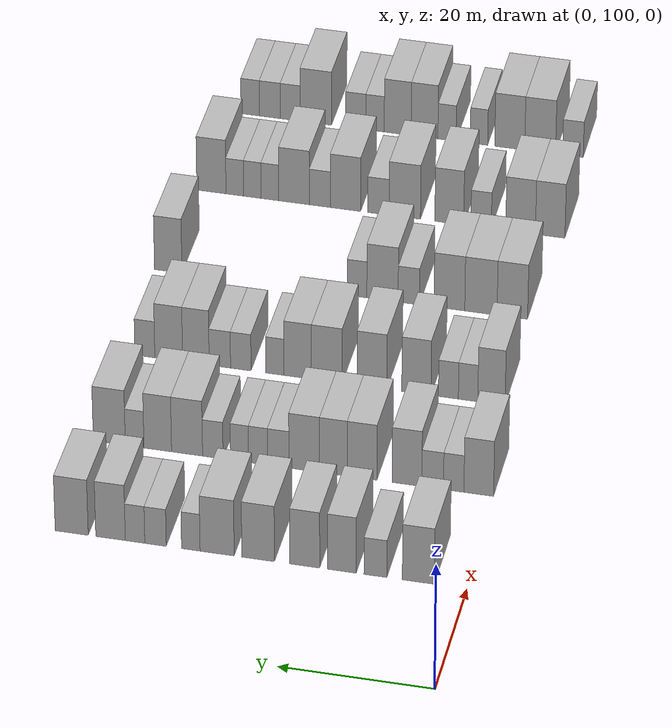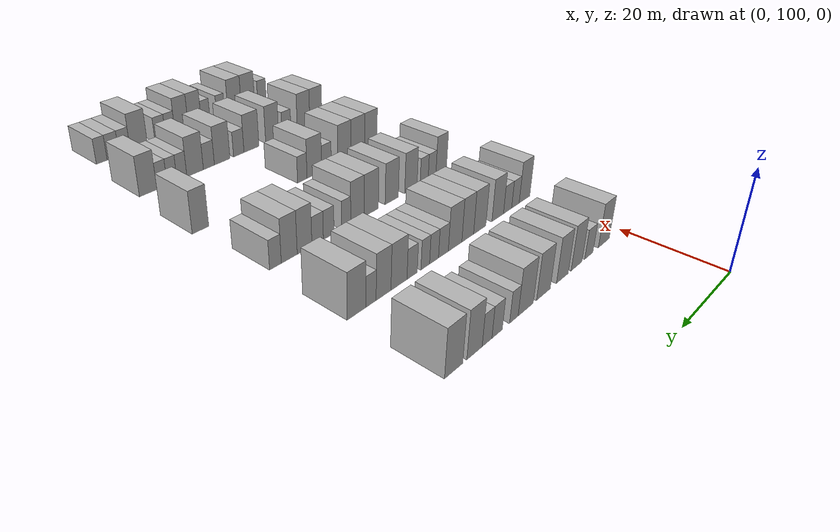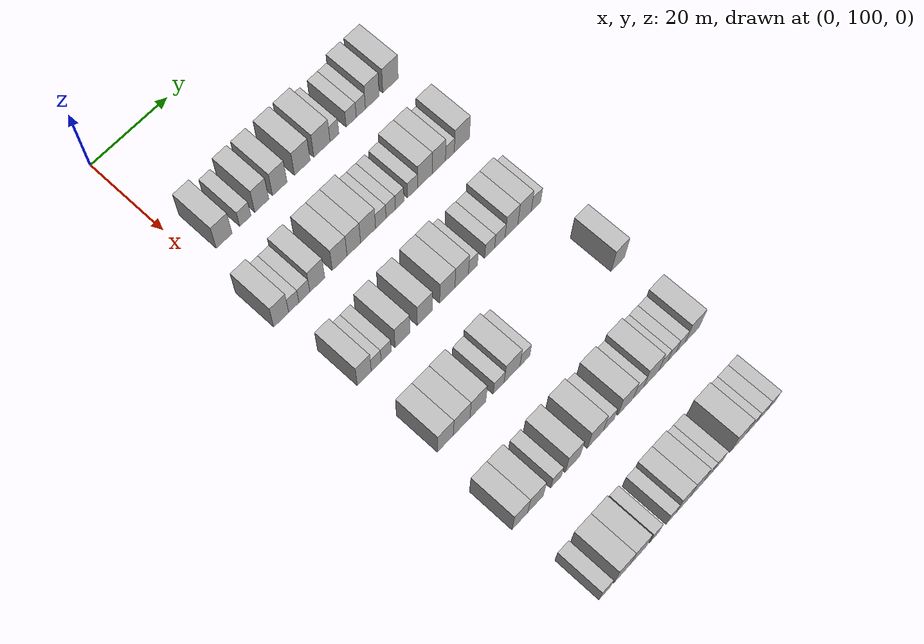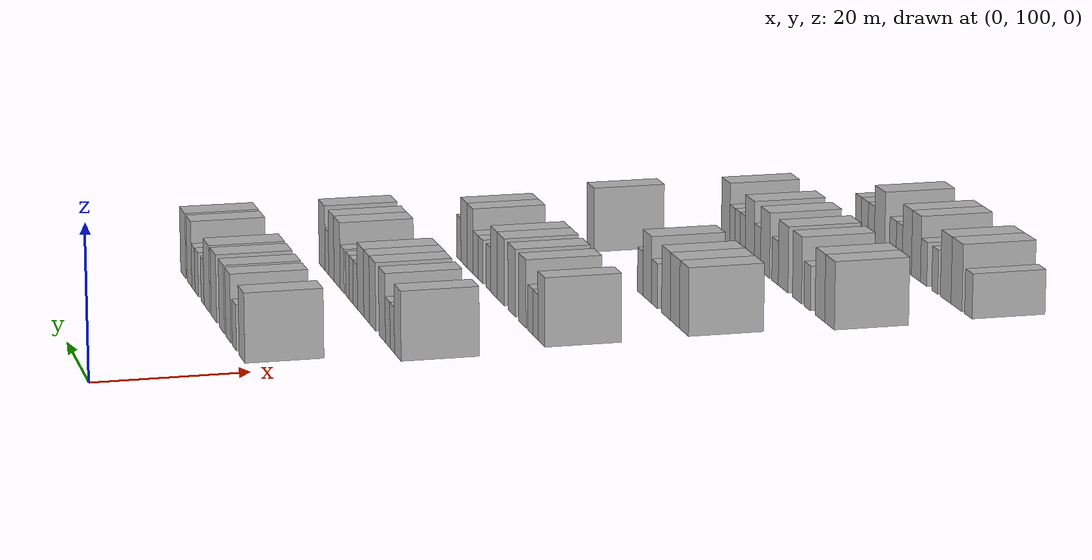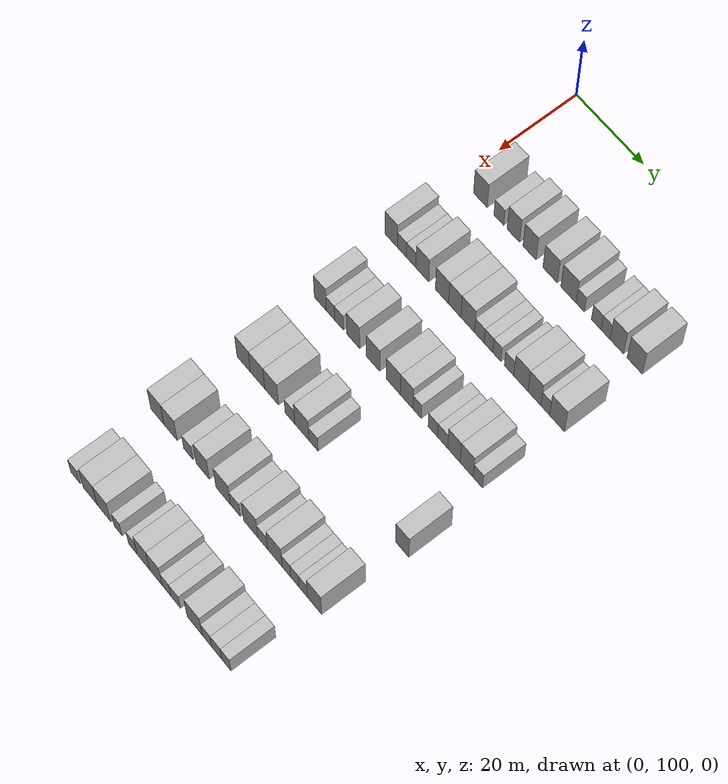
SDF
<sdf version="1.6">
 <world name="default">
  <model name="building_113">
   <static>1</static>
   <pose>25.0000 106.3141 0 0.000000 0.000000 0.000000</pose>
   <link name="link">
    <pose>0 0 4.50 0 0 0</pose>
    <collision name="collision"><geometry><box><size>10.0000 4.1466 9.0000</size></box></geometry></collision>
    <visual name="visual">
     <cast_shadows>0</cast_shadows>
     <geometry><box><size>10.0000 4.1466 9.0000</size></box></geometry>
     <material>
      <script>
       <uri>model://HANNAS_wall/materials/scripts</uri>
       <uri>model://HANNAS_wall/materials/textures</uri>
       <name>vrc/HANNAS_wall</name>
      </script>
     </material>
    </visual>
   </link>
  </model>
  <model name="building_114">
   <static>1</static>
   <pose>25.0000 111.8734 0 0.000000 0.000000 0.000000</pose>
   <link name="link">
    <pose>0 0 3.00 0 0 0</pose>
    <collision name="collision"><geometry><box><size>10.0000 2.9721 6.0000</size></box></geometry></collision>
    <visual name="visual">
     <cast_shadows>0</cast_shadows>
     <geometry><box><size>10.0000 2.9721 6.0000</size></box></geometry>
     <material>
      <script>
       <uri>model://HANNAS_wall/materials/scripts</uri>
       <uri>model://HANNAS_wall/materials/textures</uri>
       <name>vrc/HANNAS_wall</name>
      </script>
     </material>
    </visual>
   </link>
  </model>
  <model name="building_115">
   <static>1</static>
   <pose>25.0000 116.2330 0 0.000000 0.000000 0.000000</pose>
   <link name="link">
    <pose>0 0 4.50 0 0 0</pose>
    <collision name="collision"><geometry><box><size>10.0000 3.7470 9.0000</size></box></geometry></collision>
    <visual name="visual">
     <cast_shadows>0</cast_shadows>
     <geometry><box><size>10.0000 3.7470 9.0000</size></box></geometry>
     <material>
      <script>
       <uri>model://HANNAS_wall/materials/scripts</uri>
       <uri>model://HANNAS_wall/materials/textures</uri>
       <name>vrc/HANNAS_wall</name>
      </script>
     </material>
    </visual>
   </link>
  </model>
  <model name="building_116">
   <static>1</static>
   <pose>25.0000 121.0497 0 0.000000 0.000000 0.000000</pose>
   <link name="link">
    <pose>0 0 4.50 0 0 0</pose>
    <collision name="collision"><geometry><box><size>10.0000 3.8864 9.0000</size></box></geometry></collision>
    <visual name="visual">
     <cast_shadows>0</cast_shadows>
     <geometry><box><size>10.0000 3.8864 9.0000</size></box></geometry>
     <material>
      <script>
       <uri>model://HANNAS_wall/materials/scripts</uri>
       <uri>model://HANNAS_wall/materials/textures</uri>
       <name>vrc/HANNAS_wall</name>
      </script>
     </material>
    </visual>
   </link>
  </model>
  <model name="building_117">
   <static>1</static>
   <pose>25.0000 127.1225 0 0.000000 0.000000 0.000000</pose>
   <link name="link">
    <pose>0 0 4.50 0 0 0</pose>
    <collision name="collision"><geometry><box><size>10.0000 4.2592 9.0000</size></box></geometry></collision>
    <visual name="visual">
     <cast_shadows>0</cast_shadows>
     <geometry><box><size>10.0000 4.2592 9.0000</size></box></geometry>
     <material>
      <script>
       <uri>model://HANNAS_wall/materials/scripts</uri>
       <uri>model://HANNAS_wall/materials/textures</uri>
       <name>vrc/HANNAS_wall</name>
      </script>
     </material>
    </visual>
   </link>
  </model>
  <model name="building_118">
   <static>1</static>
   <pose>25.0000 132.4827 0 0.000000 0.000000 0.000000</pose>
   <link name="link">
    <pose>0 0 4.50 0 0 0</pose>
    <collision name="collision"><geometry><box><size>10.0000 4.4614 9.0000</size></box></geometry></collision>
    <visual name="visual">
     <cast_shadows>0</cast_shadows>
     <geometry><box><size>10.0000 4.4614 9.0000</size></box></geometry>
     <material>
      <script>
       <uri>model://HANNAS_wall/materials/scripts</uri>
       <uri>model://HANNAS_wall/materials/textures</uri>
       <name>vrc/HANNAS_wall</name>
      </script>
     </material>
    </visual>
   </link>
  </model>
  <model name="building_119">
   <static>1</static>
   <pose>25.0000 135.9269 0 0.000000 0.000000 0.000000</pose>
   <link name="link">
    <pose>0 0 3.00 0 0 0</pose>
    <collision name="collision"><geometry><box><size>10.0000 2.4269 6.0000</size></box></geometry></collision>
    <visual name="visual">
     <cast_shadows>0</cast_shadows>
     <geometry><box><size>10.0000 2.4269 6.0000</size></box></geometry>
     <material>
      <script>
       <uri>model://HANNAS_wall/materials/scripts</uri>
       <uri>model://HANNAS_wall/materials/textures</uri>
       <name>vrc/HANNAS_wall</name>
      </script>
     </material>
    </visual>
   </link>
  </model>
  <model name="building_120">
   <static>1</static>
   <pose>25.0000 140.5497 0 0.000000 0.000000 0.000000</pose>
   <link name="link">
    <pose>0 0 3.00 0 0 0</pose>
    <collision name="collision"><geometry><box><size>10.0000 2.8186 6.0000</size></box></geometry></collision>
    <visual name="visual">
     <cast_shadows>0</cast_shadows>
     <geometry><box><size>10.0000 2.8186 6.0000</size></box></geometry>
     <material>
      <script>
       <uri>model://HANNAS_wall/materials/scripts</uri>
       <uri>model://HANNAS_wall/materials/textures</uri>
       <name>vrc/HANNAS_wall</name>
      </script>
     </material>
    </visual>
   </link>
  </model>
  <model name="building_121">
   <static>1</static>
   <pose>25.0000 143.2389 0 0.000000 0.000000 0.000000</pose>
   <link name="link">
    <pose>0 0 3.00 0 0 0</pose>
    <collision name="collision"><geometry><box><size>10.0000 2.5599 6.0000</size></box></geometry></collision>
    <visual name="visual">
     <cast_shadows>0</cast_shadows>
     <geometry><box><size>10.0000 2.5599 6.0000</size></box></geometry>
     <material>
      <script>
       <uri>model://HANNAS_wall/materials/scripts</uri>
       <uri>model://HANNAS_wall/materials/textures</uri>
       <name>vrc/HANNAS_wall</name>
      </script>
     </material>
    </visual>
   </link>
  </model>
  <model name="building_122">
   <static>1</static>
   <pose>25.0000 146.4609 0 0.000000 0.000000 0.000000</pose>
   <link name="link">
    <pose>0 0 4.50 0 0 0</pose>
    <collision name="collision"><geometry><box><size>10.0000 3.8839 9.0000</size></box></geometry></collision>
    <visual name="visual">
     <cast_shadows>0</cast_shadows>
     <geometry><box><size>10.0000 3.8839 9.0000</size></box></geometry>
     <material>
      <script>
       <uri>model://HANNAS_wall/materials/scripts</uri>
       <uri>model://HANNAS_wall/materials/textures</uri>
       <name>vrc/HANNAS_wall</name>
      </script>
     </material>
    </visual>
   </link>
  </model>
  <model name="building_123">
   <static>1</static>
   <pose>25.0000 151.5786 0 0.000000 0.000000 0.000000</pose>
   <link name="link">
    <pose>0 0 4.50 0 0 0</pose>
    <collision name="collision"><geometry><box><size>10.0000 4.3517 9.0000</size></box></geometry></collision>
    <visual name="visual">
     <cast_shadows>0</cast_shadows>
     <geometry><box><size>10.0000 4.3517 9.0000</size></box></geometry>
     <material>
      <script>
       <uri>model://HANNAS_wall/materials/scripts</uri>
       <uri>model://HANNAS_wall/materials/textures</uri>
       <name>vrc/HANNAS_wall</name>
      </script>
     </material>
    </visual>
   </link>
  </model>
  <model name="building_282">
   <static>1</static>
   <pose>44.0000 102.3868 0 0.000000 0.000000 0.000000</pose>
   <link name="link">
    <pose>0 0 4.50 0 0 0</pose>
    <collision name="collision"><geometry><box><size>10.0000 3.9000 9.0000</size></box></geometry></collision>
    <visual name="visual">
     <cast_shadows>0</cast_shadows>
     <geometry><box><size>10.0000 3.9000 9.0000</size></box></geometry>
     <material>
      <script>
       <uri>model://HANNAS_wall/materials/scripts</uri>
       <uri>model://HANNAS_wall/materials/textures</uri>
       <name>vrc/HANNAS_wall</name>
      </script>
     </material>
    </visual>
   </link>
  </model>
  <model name="building_283">
   <static>1</static>
   <pose>44.0000 105.6790 0 0.000000 0.000000 0.000000</pose>
   <link name="link">
    <pose>0 0 3.00 0 0 0</pose>
    <collision name="collision"><geometry><box><size>10.0000 2.6845 6.0000</size></box></geometry></collision>
    <visual name="visual">
     <cast_shadows>0</cast_shadows>
     <geometry><box><size>10.0000 2.6845 6.0000</size></box></geometry>
     <material>
      <script>
       <uri>model://HANNAS_wall/materials/scripts</uri>
       <uri>model://HANNAS_wall/materials/textures</uri>
       <name>vrc/HANNAS_wall</name>
      </script>
     </material>
    </visual>
   </link>
  </model>
  <model name="building_284">
   <static>1</static>
   <pose>44.0000 108.4467 0 0.000000 0.000000 0.000000</pose>
   <link name="link">
    <pose>0 0 3.00 0 0 0</pose>
    <collision name="collision"><geometry><box><size>10.0000 2.8510 6.0000</size></box></geometry></collision>
    <visual name="visual">
     <cast_shadows>0</cast_shadows>
     <geometry><box><size>10.0000 2.8510 6.0000</size></box></geometry>
     <material>
      <script>
       <uri>model://HANNAS_wall/materials/scripts</uri>
       <uri>model://HANNAS_wall/materials/textures</uri>
       <name>vrc/HANNAS_wall</name>
      </script>
     </material>
    </visual>
   </link>
  </model>
  <model name="building_285">
   <static>1</static>
   <pose>44.0000 111.8339 0 0.000000 0.000000 0.000000</pose>
   <link name="link">
    <pose>0 0 4.50 0 0 0</pose>
    <collision name="collision"><geometry><box><size>10.0000 3.9232 9.0000</size></box></geometry></collision>
    <visual name="visual">
     <cast_shadows>0</cast_shadows>
     <geometry><box><size>10.0000 3.9232 9.0000</size></box></geometry>
     <material>
      <script>
       <uri>model://HANNAS_wall/materials/scripts</uri>
       <uri>model://HANNAS_wall/materials/textures</uri>
       <name>vrc/HANNAS_wall</name>
      </script>
     </material>
    </visual>
   </link>
  </model>
  <model name="building_286">
   <static>1</static>
   <pose>44.0000 117.7699 0 0.000000 0.000000 0.000000</pose>
   <link name="link">
    <pose>0 0 4.50 0 0 0</pose>
    <collision name="collision"><geometry><box><size>10.0000 3.9488 9.0000</size></box></geometry></collision>
    <visual name="visual">
     <cast_shadows>0</cast_shadows>
     <geometry><box><size>10.0000 3.9488 9.0000</size></box></geometry>
     <material>
      <script>
       <uri>model://HANNAS_wall/materials/scripts</uri>
       <uri>model://HANNAS_wall/materials/textures</uri>
       <name>vrc/HANNAS_wall</name>
      </script>
     </material>
    </visual>
   </link>
  </model>
  <model name="building_287">
   <static>1</static>
   <pose>44.0000 121.5676 0 0.000000 0.000000 0.000000</pose>
   <link name="link">
    <pose>0 0 4.50 0 0 0</pose>
    <collision name="collision"><geometry><box><size>10.0000 3.6467 9.0000</size></box></geometry></collision>
    <visual name="visual">
     <cast_shadows>0</cast_shadows>
     <geometry><box><size>10.0000 3.6467 9.0000</size></box></geometry>
     <material>
      <script>
       <uri>model://HANNAS_wall/materials/scripts</uri>
       <uri>model://HANNAS_wall/materials/textures</uri>
       <name>vrc/HANNAS_wall</name>
      </script>
     </material>
    </visual>
   </link>
  </model>
  <model name="building_288">
   <static>1</static>
   <pose>44.0000 125.4205 0 0.000000 0.000000 0.000000</pose>
   <link name="link">
    <pose>0 0 4.50 0 0 0</pose>
    <collision name="collision"><geometry><box><size>10.0000 4.0592 9.0000</size></box></geometry></collision>
    <visual name="visual">
     <cast_shadows>0</cast_shadows>
     <geometry><box><size>10.0000 4.0592 9.0000</size></box></geometry>
     <material>
      <script>
       <uri>model://HANNAS_wall/materials/scripts</uri>
       <uri>model://HANNAS_wall/materials/textures</uri>
       <name>vrc/HANNAS_wall</name>
      </script>
     </material>
    </visual>
   </link>
  </model>
  <model name="building_289">
   <static>1</static>
   <pose>44.0000 128.8764 0 0.000000 0.000000 0.000000</pose>
   <link name="link">
    <pose>0 0 3.00 0 0 0</pose>
    <collision name="collision"><geometry><box><size>10.0000 2.8526 6.0000</size></box></geometry></collision>
    <visual name="visual">
     <cast_shadows>0</cast_shadows>
     <geometry><box><size>10.0000 2.8526 6.0000</size></box></geometry>
     <material>
      <script>
       <uri>model://HANNAS_wall/materials/scripts</uri>
       <uri>model://HANNAS_wall/materials/textures</uri>
       <name>vrc/HANNAS_wall</name>
      </script>
     </material>
    </visual>
   </link>
  </model>
  <model name="building_290">
   <static>1</static>
   <pose>44.0000 131.5628 0 0.000000 0.000000 0.000000</pose>
   <link name="link">
    <pose>0 0 3.00 0 0 0</pose>
    <collision name="collision"><geometry><box><size>10.0000 2.5201 6.0000</size></box></geometry></collision>
    <visual name="visual">
     <cast_shadows>0</cast_shadows>
     <geometry><box><size>10.0000 2.5201 6.0000</size></box></geometry>
     <material>
      <script>
       <uri>model://HANNAS_wall/materials/scripts</uri>
       <uri>model://HANNAS_wall/materials/textures</uri>
       <name>vrc/HANNAS_wall</name>
      </script>
     </material>
    </visual>
   </link>
  </model>
  <model name="building_291">
   <static>1</static>
   <pose>44.0000 134.0232 0 0.000000 0.000000 0.000000</pose>
   <link name="link">
    <pose>0 0 3.00 0 0 0</pose>
    <collision name="collision"><geometry><box><size>10.0000 2.4007 6.0000</size></box></geometry></collision>
    <visual name="visual">
     <cast_shadows>0</cast_shadows>
     <geometry><box><size>10.0000 2.4007 6.0000</size></box></geometry>
     <material>
      <script>
       <uri>model://HANNAS_wall/materials/scripts</uri>
       <uri>model://HANNAS_wall/materials/textures</uri>
       <name>vrc/HANNAS_wall</name>
      </script>
     </material>
    </visual>
   </link>
  </model>
  <model name="building_292">
   <static>1</static>
   <pose>44.0000 137.5893 0 0.000000 0.000000 0.000000</pose>
   <link name="link">
    <pose>0 0 3.00 0 0 0</pose>
    <collision name="collision"><geometry><box><size>10.0000 2.7314 6.0000</size></box></geometry></collision>
    <visual name="visual">
     <cast_shadows>0</cast_shadows>
     <geometry><box><size>10.0000 2.7314 6.0000</size></box></geometry>
     <material>
      <script>
       <uri>model://HANNAS_wall/materials/scripts</uri>
       <uri>model://HANNAS_wall/materials/textures</uri>
       <name>vrc/HANNAS_wall</name>
      </script>
     </material>
    </visual>
   </link>
  </model>
  <model name="building_293">
   <static>1</static>
   <pose>44.0000 141.0234 0 0.000000 0.000000 0.000000</pose>
   <link name="link">
    <pose>0 0 4.50 0 0 0</pose>
    <collision name="collision"><geometry><box><size>10.0000 4.1368 9.0000</size></box></geometry></collision>
    <visual name="visual">
     <cast_shadows>0</cast_shadows>
     <geometry><box><size>10.0000 4.1368 9.0000</size></box></geometry>
     <material>
      <script>
       <uri>model://HANNAS_wall/materials/scripts</uri>
       <uri>model://HANNAS_wall/materials/textures</uri>
       <name>vrc/HANNAS_wall</name>
      </script>
     </material>
    </visual>
   </link>
  </model>
  <model name="building_294">
   <static>1</static>
   <pose>44.0000 144.9378 0 0.000000 0.000000 0.000000</pose>
   <link name="link">
    <pose>0 0 4.50 0 0 0</pose>
    <collision name="collision"><geometry><box><size>10.0000 3.6921 9.0000</size></box></geometry></collision>
    <visual name="visual">
     <cast_shadows>0</cast_shadows>
     <geometry><box><size>10.0000 3.6921 9.0000</size></box></geometry>
     <material>
      <script>
       <uri>model://HANNAS_wall/materials/scripts</uri>
       <uri>model://HANNAS_wall/materials/textures</uri>
       <name>vrc/HANNAS_wall</name>
      </script>
     </material>
    </visual>
   </link>
  </model>
  <model name="building_295">
   <static>1</static>
   <pose>44.0000 148.0329 0 0.000000 0.000000 0.000000</pose>
   <link name="link">
    <pose>0 0 3.00 0 0 0</pose>
    <collision name="collision"><geometry><box><size>10.0000 2.4982 6.0000</size></box></geometry></collision>
    <visual name="visual">
     <cast_shadows>0</cast_shadows>
     <geometry><box><size>10.0000 2.4982 6.0000</size></box></geometry>
     <material>
      <script>
       <uri>model://HANNAS_wall/materials/scripts</uri>
       <uri>model://HANNAS_wall/materials/textures</uri>
       <name>vrc/HANNAS_wall</name>
      </script>
     </material>
    </visual>
   </link>
  </model>
  <model name="building_296">
   <static>1</static>
   <pose>44.0000 151.4280 0 0.000000 0.000000 0.000000</pose>
   <link name="link">
    <pose>0 0 4.50 0 0 0</pose>
    <collision name="collision"><geometry><box><size>10.0000 4.2919 9.0000</size></box></geometry></collision>
    <visual name="visual">
     <cast_shadows>0</cast_shadows>
     <geometry><box><size>10.0000 4.2919 9.0000</size></box></geometry>
     <material>
      <script>
       <uri>model://HANNAS_wall/materials/scripts</uri>
       <uri>model://HANNAS_wall/materials/textures</uri>
       <name>vrc/HANNAS_wall</name>
      </script>
     </material>
    </visual>
   </link>
  </model>
  <model name="building_456">
   <static>1</static>
   <pose>63.0000 104.5481 0 0.000000 0.000000 0.000000</pose>
   <link name="link">
    <pose>0 0 4.50 0 0 0</pose>
    <collision name="collision"><geometry><box><size>10.0000 3.6527 9.0000</size></box></geometry></collision>
    <visual name="visual">
     <cast_shadows>0</cast_shadows>
     <geometry><box><size>10.0000 3.6527 9.0000</size></box></geometry>
     <material>
      <script>
       <uri>model://HANNAS_wall/materials/scripts</uri>
       <uri>model://HANNAS_wall/materials/textures</uri>
       <name>vrc/HANNAS_wall</name>
      </script>
     </material>
    </visual>
   </link>
  </model>
  <model name="building_457">
   <static>1</static>
   <pose>63.0000 107.6737 0 0.000000 0.000000 0.000000</pose>
   <link name="link">
    <pose>0 0 3.00 0 0 0</pose>
    <collision name="collision"><geometry><box><size>10.0000 2.5985 6.0000</size></box></geometry></collision>
    <visual name="visual">
     <cast_shadows>0</cast_shadows>
     <geometry><box><size>10.0000 2.5985 6.0000</size></box></geometry>
     <material>
      <script>
       <uri>model://HANNAS_wall/materials/scripts</uri>
       <uri>model://HANNAS_wall/materials/textures</uri>
       <name>vrc/HANNAS_wall</name>
      </script>
     </material>
    </visual>
   </link>
  </model>
  <model name="building_458">
   <static>1</static>
   <pose>63.0000 110.3097 0 0.000000 0.000000 0.000000</pose>
   <link name="link">
    <pose>0 0 3.00 0 0 0</pose>
    <collision name="collision"><geometry><box><size>10.0000 2.6736 6.0000</size></box></geometry></collision>
    <visual name="visual">
     <cast_shadows>0</cast_shadows>
     <geometry><box><size>10.0000 2.6736 6.0000</size></box></geometry>
     <material>
      <script>
       <uri>model://HANNAS_wall/materials/scripts</uri>
       <uri>model://HANNAS_wall/materials/textures</uri>
       <name>vrc/HANNAS_wall</name>
      </script>
     </material>
    </visual>
   </link>
  </model>
  <model name="building_459">
   <static>1</static>
   <pose>63.0000 114.6104 0 0.000000 0.000000 0.000000</pose>
   <link name="link">
    <pose>0 0 4.50 0 0 0</pose>
    <collision name="collision"><geometry><box><size>10.0000 3.9277 9.0000</size></box></geometry></collision>
    <visual name="visual">
     <cast_shadows>0</cast_shadows>
     <geometry><box><size>10.0000 3.9277 9.0000</size></box></geometry>
     <material>
      <script>
       <uri>model://HANNAS_wall/materials/scripts</uri>
       <uri>model://HANNAS_wall/materials/textures</uri>
       <name>vrc/HANNAS_wall</name>
      </script>
     </material>
    </visual>
   </link>
  </model>
  <model name="building_460">
   <static>1</static>
   <pose>63.0000 120.5851 0 0.000000 0.000000 0.000000</pose>
   <link name="link">
    <pose>0 0 4.50 0 0 0</pose>
    <collision name="collision"><geometry><box><size>10.0000 4.0217 9.0000</size></box></geometry></collision>
    <visual name="visual">
     <cast_shadows>0</cast_shadows>
     <geometry><box><size>10.0000 4.0217 9.0000</size></box></geometry>
     <material>
      <script>
       <uri>model://HANNAS_wall/materials/scripts</uri>
       <uri>model://HANNAS_wall/materials/textures</uri>
       <name>vrc/HANNAS_wall</name>
      </script>
     </material>
    </visual>
   </link>
  </model>
  <model name="building_461">
   <static>1</static>
   <pose>63.0000 126.6717 0 0.000000 0.000000 0.000000</pose>
   <link name="link">
    <pose>0 0 4.50 0 0 0</pose>
    <collision name="collision"><geometry><box><size>10.0000 4.1515 9.0000</size></box></geometry></collision>
    <visual name="visual">
     <cast_shadows>0</cast_shadows>
     <geometry><box><size>10.0000 4.1515 9.0000</size></box></geometry>
     <material>
      <script>
       <uri>model://HANNAS_wall/materials/scripts</uri>
       <uri>model://HANNAS_wall/materials/textures</uri>
       <name>vrc/HANNAS_wall</name>
      </script>
     </material>
    </visual>
   </link>
  </model>
  <model name="building_462">
   <static>1</static>
   <pose>63.0000 130.6033 0 0.000000 0.000000 0.000000</pose>
   <link name="link">
    <pose>0 0 4.50 0 0 0</pose>
    <collision name="collision"><geometry><box><size>10.0000 3.7117 9.0000</size></box></geometry></collision>
    <visual name="visual">
     <cast_shadows>0</cast_shadows>
     <geometry><box><size>10.0000 3.7117 9.0000</size></box></geometry>
     <material>
      <script>
       <uri>model://HANNAS_wall/materials/scripts</uri>
       <uri>model://HANNAS_wall/materials/textures</uri>
       <name>vrc/HANNAS_wall</name>
      </script>
     </material>
    </visual>
   </link>
  </model>
  <model name="building_463">
   <static>1</static>
   <pose>63.0000 133.6950 0 0.000000 0.000000 0.000000</pose>
   <link name="link">
    <pose>0 0 3.00 0 0 0</pose>
    <collision name="collision"><geometry><box><size>10.0000 2.4716 6.0000</size></box></geometry></collision>
    <visual name="visual">
     <cast_shadows>0</cast_shadows>
     <geometry><box><size>10.0000 2.4716 6.0000</size></box></geometry>
     <material>
      <script>
       <uri>model://HANNAS_wall/materials/scripts</uri>
       <uri>model://HANNAS_wall/materials/textures</uri>
       <name>vrc/HANNAS_wall</name>
      </script>
     </material>
    </visual>
   </link>
  </model>
  <model name="building_464">
   <static>1</static>
   <pose>63.0000 138.3239 0 0.000000 0.000000 0.000000</pose>
   <link name="link">
    <pose>0 0 3.00 0 0 0</pose>
    <collision name="collision"><geometry><box><size>10.0000 2.7862 6.0000</size></box></geometry></collision>
    <visual name="visual">
     <cast_shadows>0</cast_shadows>
     <geometry><box><size>10.0000 2.7862 6.0000</size></box></geometry>
     <material>
      <script>
       <uri>model://HANNAS_wall/materials/scripts</uri>
       <uri>model://HANNAS_wall/materials/textures</uri>
       <name>vrc/HANNAS_wall</name>
      </script>
     </material>
    </visual>
   </link>
  </model>
  <model name="building_465">
   <static>1</static>
   <pose>63.0000 141.1703 0 0.000000 0.000000 0.000000</pose>
   <link name="link">
    <pose>0 0 3.00 0 0 0</pose>
    <collision name="collision"><geometry><box><size>10.0000 2.9067 6.0000</size></box></geometry></collision>
    <visual name="visual">
     <cast_shadows>0</cast_shadows>
     <geometry><box><size>10.0000 2.9067 6.0000</size></box></geometry>
     <material>
      <script>
       <uri>model://HANNAS_wall/materials/scripts</uri>
       <uri>model://HANNAS_wall/materials/textures</uri>
       <name>vrc/HANNAS_wall</name>
      </script>
     </material>
    </visual>
   </link>
  </model>
  <model name="building_466">
   <static>1</static>
   <pose>63.0000 144.4277 0 0.000000 0.000000 0.000000</pose>
   <link name="link">
    <pose>0 0 4.50 0 0 0</pose>
    <collision name="collision"><geometry><box><size>10.0000 3.6082 9.0000</size></box></geometry></collision>
    <visual name="visual">
     <cast_shadows>0</cast_shadows>
     <geometry><box><size>10.0000 3.6082 9.0000</size></box></geometry>
     <material>
      <script>
       <uri>model://HANNAS_wall/materials/scripts</uri>
       <uri>model://HANNAS_wall/materials/textures</uri>
       <name>vrc/HANNAS_wall</name>
      </script>
     </material>
    </visual>
   </link>
  </model>
  <model name="building_467">
   <static>1</static>
   <pose>63.0000 148.1267 0 0.000000 0.000000 0.000000</pose>
   <link name="link">
    <pose>0 0 4.50 0 0 0</pose>
    <collision name="collision"><geometry><box><size>10.0000 3.7897 9.0000</size></box></geometry></collision>
    <visual name="visual">
     <cast_shadows>0</cast_shadows>
     <geometry><box><size>10.0000 3.7897 9.0000</size></box></geometry>
     <material>
      <script>
       <uri>model://HANNAS_wall/materials/scripts</uri>
       <uri>model://HANNAS_wall/materials/textures</uri>
       <name>vrc/HANNAS_wall</name>
      </script>
     </material>
    </visual>
   </link>
  </model>
  <model name="building_468">
   <static>1</static>
   <pose>63.0000 151.3763 0 0.000000 0.000000 0.000000</pose>
   <link name="link">
    <pose>0 0 3.00 0 0 0</pose>
    <collision name="collision"><geometry><box><size>10.0000 2.7096 6.0000</size></box></geometry></collision>
    <visual name="visual">
     <cast_shadows>0</cast_shadows>
     <geometry><box><size>10.0000 2.7096 6.0000</size></box></geometry>
     <material>
      <script>
       <uri>model://HANNAS_wall/materials/scripts</uri>
       <uri>model://HANNAS_wall/materials/textures</uri>
       <name>vrc/HANNAS_wall</name>
      </script>
     </material>
    </visual>
   </link>
  </model>
  <model name="building_621">
   <static>1</static>
   <pose>82.0000 105.5297 0 0.000000 0.000000 0.000000</pose>
   <link name="link">
    <pose>0 0 4.50 0 0 0</pose>
    <collision name="collision"><geometry><box><size>10.0000 4.1573 9.0000</size></box></geometry></collision>
    <visual name="visual">
     <cast_shadows>0</cast_shadows>
     <geometry><box><size>10.0000 4.1573 9.0000</size></box></geometry>
     <material>
      <script>
       <uri>model://HANNAS_wall/materials/scripts</uri>
       <uri>model://HANNAS_wall/materials/textures</uri>
       <name>vrc/HANNAS_wall</name>
      </script>
     </material>
    </visual>
   </link>
  </model>
  <model name="building_622">
   <static>1</static>
   <pose>82.0000 109.8102 0 0.000000 0.000000 0.000000</pose>
   <link name="link">
    <pose>0 0 4.50 0 0 0</pose>
    <collision name="collision"><geometry><box><size>10.0000 4.4038 9.0000</size></box></geometry></collision>
    <visual name="visual">
     <cast_shadows>0</cast_shadows>
     <geometry><box><size>10.0000 4.4038 9.0000</size></box></geometry>
     <material>
      <script>
       <uri>model://HANNAS_wall/materials/scripts</uri>
       <uri>model://HANNAS_wall/materials/textures</uri>
       <name>vrc/HANNAS_wall</name>
      </script>
     </material>
    </visual>
   </link>
  </model>
  <model name="building_623">
   <static>1</static>
   <pose>82.0000 114.1110 0 0.000000 0.000000 0.000000</pose>
   <link name="link">
    <pose>0 0 4.50 0 0 0</pose>
    <collision name="collision"><geometry><box><size>10.0000 4.1977 9.0000</size></box></geometry></collision>
    <visual name="visual">
     <cast_shadows>0</cast_shadows>
     <geometry><box><size>10.0000 4.1977 9.0000</size></box></geometry>
     <material>
      <script>
       <uri>model://HANNAS_wall/materials/scripts</uri>
       <uri>model://HANNAS_wall/materials/textures</uri>
       <name>vrc/HANNAS_wall</name>
      </script>
     </material>
    </visual>
   </link>
  </model>
  <model name="building_624">
   <static>1</static>
   <pose>82.0000 119.6661 0 0.000000 0.000000 0.000000</pose>
   <link name="link">
    <pose>0 0 3.00 0 0 0</pose>
    <collision name="collision"><geometry><box><size>10.0000 2.9126 6.0000</size></box></geometry></collision>
    <visual name="visual">
     <cast_shadows>0</cast_shadows>
     <geometry><box><size>10.0000 2.9126 6.0000</size></box></geometry>
     <material>
      <script>
       <uri>model://HANNAS_wall/materials/scripts</uri>
       <uri>model://HANNAS_wall/materials/textures</uri>
       <name>vrc/HANNAS_wall</name>
      </script>
     </material>
    </visual>
   </link>
  </model>
  <model name="building_625">
   <static>1</static>
   <pose>82.0000 123.2720 0 0.000000 0.000000 0.000000</pose>
   <link name="link">
    <pose>0 0 4.50 0 0 0</pose>
    <collision name="collision"><geometry><box><size>10.0000 4.2993 9.0000</size></box></geometry></collision>
    <visual name="visual">
     <cast_shadows>0</cast_shadows>
     <geometry><box><size>10.0000 4.2993 9.0000</size></box></geometry>
     <material>
      <script>
       <uri>model://HANNAS_wall/materials/scripts</uri>
       <uri>model://HANNAS_wall/materials/textures</uri>
       <name>vrc/HANNAS_wall</name>
      </script>
     </material>
    </visual>
   </link>
  </model>
  <model name="building_626">
   <static>1</static>
   <pose>82.0000 126.7798 0 0.000000 0.000000 0.000000</pose>
   <link name="link">
    <pose>0 0 3.00 0 0 0</pose>
    <collision name="collision"><geometry><box><size>10.0000 2.7163 6.0000</size></box></geometry></collision>
    <visual name="visual">
     <cast_shadows>0</cast_shadows>
     <geometry><box><size>10.0000 2.7163 6.0000</size></box></geometry>
     <material>
      <script>
       <uri>model://HANNAS_wall/materials/scripts</uri>
       <uri>model://HANNAS_wall/materials/textures</uri>
       <name>vrc/HANNAS_wall</name>
      </script>
     </material>
    </visual>
   </link>
  </model>
  <model name="building_627">
   <static>1</static>
   <pose>82.0000 152.8457 0 0.000000 0.000000 0.000000</pose>
   <link name="link">
    <pose>0 0 4.50 0 0 0</pose>
    <collision name="collision"><geometry><box><size>10.0000 3.8052 9.0000</size></box></geometry></collision>
    <visual name="visual">
     <cast_shadows>0</cast_shadows>
     <geometry><box><size>10.0000 3.8052 9.0000</size></box></geometry>
     <material>
      <script>
       <uri>model://HANNAS_wall/materials/scripts</uri>
       <uri>model://HANNAS_wall/materials/textures</uri>
       <name>vrc/HANNAS_wall</name>
      </script>
     </material>
    </visual>
   </link>
  </model>
  <model name="building_775">
   <static>1</static>
   <pose>101.0000 104.0603 0 0.000000 0.000000 0.000000</pose>
   <link name="link">
    <pose>0 0 4.50 0 0 0</pose>
    <collision name="collision"><geometry><box><size>10.0000 4.0846 9.0000</size></box></geometry></collision>
    <visual name="visual">
     <cast_shadows>0</cast_shadows>
     <geometry><box><size>10.0000 4.0846 9.0000</size></box></geometry>
     <material>
      <script>
       <uri>model://HANNAS_wall/materials/scripts</uri>
       <uri>model://HANNAS_wall/materials/textures</uri>
       <name>vrc/HANNAS_wall</name>
      </script>
     </material>
    </visual>
   </link>
  </model>
  <model name="building_776">
   <static>1</static>
   <pose>101.0000 108.1602 0 0.000000 0.000000 0.000000</pose>
   <link name="link">
    <pose>0 0 4.50 0 0 0</pose>
    <collision name="collision"><geometry><box><size>10.0000 4.1151 9.0000</size></box></geometry></collision>
    <visual name="visual">
     <cast_shadows>0</cast_shadows>
     <geometry><box><size>10.0000 4.1151 9.0000</size></box></geometry>
     <material>
      <script>
       <uri>model://HANNAS_wall/materials/scripts</uri>
       <uri>model://HANNAS_wall/materials/textures</uri>
       <name>vrc/HANNAS_wall</name>
      </script>
     </material>
    </visual>
   </link>
  </model>
  <model name="building_777">
   <static>1</static>
   <pose>101.0000 113.6363 0 0.000000 0.000000 0.000000</pose>
   <link name="link">
    <pose>0 0 3.00 0 0 0</pose>
    <collision name="collision"><geometry><box><size>10.0000 2.8372 6.0000</size></box></geometry></collision>
    <visual name="visual">
     <cast_shadows>0</cast_shadows>
     <geometry><box><size>10.0000 2.8372 6.0000</size></box></geometry>
     <material>
      <script>
       <uri>model://HANNAS_wall/materials/scripts</uri>
       <uri>model://HANNAS_wall/materials/textures</uri>
       <name>vrc/HANNAS_wall</name>
      </script>
     </material>
    </visual>
   </link>
  </model>
  <model name="building_778">
   <static>1</static>
   <pose>101.0000 118.0634 0 0.000000 0.000000 0.000000</pose>
   <link name="link">
    <pose>0 0 4.50 0 0 0</pose>
    <collision name="collision"><geometry><box><size>10.0000 4.0170 9.0000</size></box></geometry></collision>
    <visual name="visual">
     <cast_shadows>0</cast_shadows>
     <geometry><box><size>10.0000 4.0170 9.0000</size></box></geometry>
     <material>
      <script>
       <uri>model://HANNAS_wall/materials/scripts</uri>
       <uri>model://HANNAS_wall/materials/textures</uri>
       <name>vrc/HANNAS_wall</name>
      </script>
     </material>
    </visual>
   </link>
  </model>
  <model name="building_779">
   <static>1</static>
   <pose>101.0000 124.2625 0 0.000000 0.000000 0.000000</pose>
   <link name="link">
    <pose>0 0 4.50 0 0 0</pose>
    <collision name="collision"><geometry><box><size>10.0000 4.3811 9.0000</size></box></geometry></collision>
    <visual name="visual">
     <cast_shadows>0</cast_shadows>
     <geometry><box><size>10.0000 4.3811 9.0000</size></box></geometry>
     <material>
      <script>
       <uri>model://HANNAS_wall/materials/scripts</uri>
       <uri>model://HANNAS_wall/materials/textures</uri>
       <name>vrc/HANNAS_wall</name>
      </script>
     </material>
    </visual>
   </link>
  </model>
  <model name="building_780">
   <static>1</static>
   <pose>101.0000 127.9404 0 0.000000 0.000000 0.000000</pose>
   <link name="link">
    <pose>0 0 3.00 0 0 0</pose>
    <collision name="collision"><geometry><box><size>10.0000 2.9747 6.0000</size></box></geometry></collision>
    <visual name="visual">
     <cast_shadows>0</cast_shadows>
     <geometry><box><size>10.0000 2.9747 6.0000</size></box></geometry>
     <material>
      <script>
       <uri>model://HANNAS_wall/materials/scripts</uri>
       <uri>model://HANNAS_wall/materials/textures</uri>
       <name>vrc/HANNAS_wall</name>
      </script>
     </material>
    </visual>
   </link>
  </model>
  <model name="building_781">
   <static>1</static>
   <pose>101.0000 132.5600 0 0.000000 0.000000 0.000000</pose>
   <link name="link">
    <pose>0 0 4.50 0 0 0</pose>
    <collision name="collision"><geometry><box><size>10.0000 4.2645 9.0000</size></box></geometry></collision>
    <visual name="visual">
     <cast_shadows>0</cast_shadows>
     <geometry><box><size>10.0000 4.2645 9.0000</size></box></geometry>
     <material>
      <script>
       <uri>model://HANNAS_wall/materials/scripts</uri>
       <uri>model://HANNAS_wall/materials/textures</uri>
       <name>vrc/HANNAS_wall</name>
      </script>
     </material>
    </visual>
   </link>
  </model>
  <model name="building_782">
   <static>1</static>
   <pose>101.0000 136.1581 0 0.000000 0.000000 0.000000</pose>
   <link name="link">
    <pose>0 0 3.00 0 0 0</pose>
    <collision name="collision"><geometry><box><size>10.0000 2.9318 6.0000</size></box></geometry></collision>
    <visual name="visual">
     <cast_shadows>0</cast_shadows>
     <geometry><box><size>10.0000 2.9318 6.0000</size></box></geometry>
     <material>
      <script>
       <uri>model://HANNAS_wall/materials/scripts</uri>
       <uri>model://HANNAS_wall/materials/textures</uri>
       <name>vrc/HANNAS_wall</name>
      </script>
     </material>
    </visual>
   </link>
  </model>
  <model name="building_783">
   <static>1</static>
   <pose>101.0000 139.7692 0 0.000000 0.000000 0.000000</pose>
   <link name="link">
    <pose>0 0 4.50 0 0 0</pose>
    <collision name="collision"><geometry><box><size>10.0000 4.2903 9.0000</size></box></geometry></collision>
    <visual name="visual">
     <cast_shadows>0</cast_shadows>
     <geometry><box><size>10.0000 4.2903 9.0000</size></box></geometry>
     <material>
      <script>
       <uri>model://HANNAS_wall/materials/scripts</uri>
       <uri>model://HANNAS_wall/materials/textures</uri>
       <name>vrc/HANNAS_wall</name>
      </script>
     </material>
    </visual>
   </link>
  </model>
  <model name="building_784">
   <static>1</static>
   <pose>101.0000 143.1615 0 0.000000 0.000000 0.000000</pose>
   <link name="link">
    <pose>0 0 3.00 0 0 0</pose>
    <collision name="collision"><geometry><box><size>10.0000 2.4944 6.0000</size></box></geometry></collision>
    <visual name="visual">
     <cast_shadows>0</cast_shadows>
     <geometry><box><size>10.0000 2.4944 6.0000</size></box></geometry>
     <material>
      <script>
       <uri>model://HANNAS_wall/materials/scripts</uri>
       <uri>model://HANNAS_wall/materials/textures</uri>
       <name>vrc/HANNAS_wall</name>
      </script>
     </material>
    </visual>
   </link>
  </model>
  <model name="building_785">
   <static>1</static>
   <pose>101.0000 145.6259 0 0.000000 0.000000 0.000000</pose>
   <link name="link">
    <pose>0 0 3.00 0 0 0</pose>
    <collision name="collision"><geometry><box><size>10.0000 2.4344 6.0000</size></box></geometry></collision>
    <visual name="visual">
     <cast_shadows>0</cast_shadows>
     <geometry><box><size>10.0000 2.4344 6.0000</size></box></geometry>
     <material>
      <script>
       <uri>model://HANNAS_wall/materials/scripts</uri>
       <uri>model://HANNAS_wall/materials/textures</uri>
       <name>vrc/HANNAS_wall</name>
      </script>
     </material>
    </visual>
   </link>
  </model>
  <model name="building_786">
   <static>1</static>
   <pose>101.0000 148.0931 0 0.000000 0.000000 0.000000</pose>
   <link name="link">
    <pose>0 0 3.00 0 0 0</pose>
    <collision name="collision"><geometry><box><size>10.0000 2.4998 6.0000</size></box></geometry></collision>
    <visual name="visual">
     <cast_shadows>0</cast_shadows>
     <geometry><box><size>10.0000 2.4998 6.0000</size></box></geometry>
     <material>
      <script>
       <uri>model://HANNAS_wall/materials/scripts</uri>
       <uri>model://HANNAS_wall/materials/textures</uri>
       <name>vrc/HANNAS_wall</name>
      </script>
     </material>
    </visual>
   </link>
  </model>
  <model name="building_787">
   <static>1</static>
   <pose>101.0000 151.4005 0 0.000000 0.000000 0.000000</pose>
   <link name="link">
    <pose>0 0 4.50 0 0 0</pose>
    <collision name="collision"><geometry><box><size>10.0000 4.1150 9.0000</size></box></geometry></collision>
    <visual name="visual">
     <cast_shadows>0</cast_shadows>
     <geometry><box><size>10.0000 4.1150 9.0000</size></box></geometry>
     <material>
      <script>
       <uri>model://HANNAS_wall/materials/scripts</uri>
       <uri>model://HANNAS_wall/materials/textures</uri>
       <name>vrc/HANNAS_wall</name>
      </script>
     </material>
    </visual>
   </link>
  </model>
  <model name="building_956">
   <static>1</static>
   <pose>120.0000 104.5348 0 0.000000 0.000000 0.000000</pose>
   <link name="link">
    <pose>0 0 3.00 0 0 0</pose>
    <collision name="collision"><geometry><box><size>10.0000 2.9077 6.0000</size></box></geometry></collision>
    <visual name="visual">
     <cast_shadows>0</cast_shadows>
     <geometry><box><size>10.0000 2.9077 6.0000</size></box></geometry>
     <material>
      <script>
       <uri>model://HANNAS_wall/materials/scripts</uri>
       <uri>model://HANNAS_wall/materials/textures</uri>
       <name>vrc/HANNAS_wall</name>
      </script>
     </material>
    </visual>
   </link>
  </model>
  <model name="building_957">
   <static>1</static>
   <pose>120.0000 109.1562 0 0.000000 0.000000 0.000000</pose>
   <link name="link">
    <pose>0 0 4.50 0 0 0</pose>
    <collision name="collision"><geometry><box><size>10.0000 4.3350 9.0000</size></box></geometry></collision>
    <visual name="visual">
     <cast_shadows>0</cast_shadows>
     <geometry><box><size>10.0000 4.3350 9.0000</size></box></geometry>
     <material>
      <script>
       <uri>model://HANNAS_wall/materials/scripts</uri>
       <uri>model://HANNAS_wall/materials/textures</uri>
       <name>vrc/HANNAS_wall</name>
      </script>
     </material>
    </visual>
   </link>
  </model>
  <model name="building_958">
   <static>1</static>
   <pose>120.0000 113.4440 0 0.000000 0.000000 0.000000</pose>
   <link name="link">
    <pose>0 0 4.50 0 0 0</pose>
    <collision name="collision"><geometry><box><size>10.0000 4.2405 9.0000</size></box></geometry></collision>
    <visual name="visual">
     <cast_shadows>0</cast_shadows>
     <geometry><box><size>10.0000 4.2405 9.0000</size></box></geometry>
     <material>
      <script>
       <uri>model://HANNAS_wall/materials/scripts</uri>
       <uri>model://HANNAS_wall/materials/textures</uri>
       <name>vrc/HANNAS_wall</name>
      </script>
     </material>
    </visual>
   </link>
  </model>
  <model name="building_959">
   <static>1</static>
   <pose>120.0000 117.7985 0 0.000000 0.000000 0.000000</pose>
   <link name="link">
    <pose>0 0 3.00 0 0 0</pose>
    <collision name="collision"><geometry><box><size>10.0000 2.4686 6.0000</size></box></geometry></collision>
    <visual name="visual">
     <cast_shadows>0</cast_shadows>
     <geometry><box><size>10.0000 2.4686 6.0000</size></box></geometry>
     <material>
      <script>
       <uri>model://HANNAS_wall/materials/scripts</uri>
       <uri>model://HANNAS_wall/materials/textures</uri>
       <name>vrc/HANNAS_wall</name>
      </script>
     </material>
    </visual>
   </link>
  </model>
  <model name="building_960">
   <static>1</static>
   <pose>120.0000 122.3223 0 0.000000 0.000000 0.000000</pose>
   <link name="link">
    <pose>0 0 3.00 0 0 0</pose>
    <collision name="collision"><geometry><box><size>10.0000 2.5790 6.0000</size></box></geometry></collision>
    <visual name="visual">
     <cast_shadows>0</cast_shadows>
     <geometry><box><size>10.0000 2.5790 6.0000</size></box></geometry>
     <material>
      <script>
       <uri>model://HANNAS_wall/materials/scripts</uri>
       <uri>model://HANNAS_wall/materials/textures</uri>
       <name>vrc/HANNAS_wall</name>
      </script>
     </material>
    </visual>
   </link>
  </model>
  <model name="building_961">
   <static>1</static>
   <pose>120.0000 125.5081 0 0.000000 0.000000 0.000000</pose>
   <link name="link">
    <pose>0 0 4.50 0 0 0</pose>
    <collision name="collision"><geometry><box><size>10.0000 3.7925 9.0000</size></box></geometry></collision>
    <visual name="visual">
     <cast_shadows>0</cast_shadows>
     <geometry><box><size>10.0000 3.7925 9.0000</size></box></geometry>
     <material>
      <script>
       <uri>model://HANNAS_wall/materials/scripts</uri>
       <uri>model://HANNAS_wall/materials/textures</uri>
       <name>vrc/HANNAS_wall</name>
      </script>
     </material>
    </visual>
   </link>
  </model>
  <model name="building_962">
   <static>1</static>
   <pose>120.0000 129.3202 0 0.000000 0.000000 0.000000</pose>
   <link name="link">
    <pose>0 0 4.50 0 0 0</pose>
    <collision name="collision"><geometry><box><size>10.0000 3.8316 9.0000</size></box></geometry></collision>
    <visual name="visual">
     <cast_shadows>0</cast_shadows>
     <geometry><box><size>10.0000 3.8316 9.0000</size></box></geometry>
     <material>
      <script>
       <uri>model://HANNAS_wall/materials/scripts</uri>
       <uri>model://HANNAS_wall/materials/textures</uri>
       <name>vrc/HANNAS_wall</name>
      </script>
     </material>
    </visual>
   </link>
  </model>
  <model name="building_963">
   <static>1</static>
   <pose>120.0000 132.5495 0 0.000000 0.000000 0.000000</pose>
   <link name="link">
    <pose>0 0 3.00 0 0 0</pose>
    <collision name="collision"><geometry><box><size>10.0000 2.6271 6.0000</size></box></geometry></collision>
    <visual name="visual">
     <cast_shadows>0</cast_shadows>
     <geometry><box><size>10.0000 2.6271 6.0000</size></box></geometry>
     <material>
      <script>
       <uri>model://HANNAS_wall/materials/scripts</uri>
       <uri>model://HANNAS_wall/materials/textures</uri>
       <name>vrc/HANNAS_wall</name>
      </script>
     </material>
    </visual>
   </link>
  </model>
  <model name="building_964">
   <static>1</static>
   <pose>120.0000 135.3024 0 0.000000 0.000000 0.000000</pose>
   <link name="link">
    <pose>0 0 3.00 0 0 0</pose>
    <collision name="collision"><geometry><box><size>10.0000 2.8787 6.0000</size></box></geometry></collision>
    <visual name="visual">
     <cast_shadows>0</cast_shadows>
     <geometry><box><size>10.0000 2.8787 6.0000</size></box></geometry>
     <material>
      <script>
       <uri>model://HANNAS_wall/materials/scripts</uri>
       <uri>model://HANNAS_wall/materials/textures</uri>
       <name>vrc/HANNAS_wall</name>
      </script>
     </material>
    </visual>
   </link>
  </model>
  <model name="building_965">
   <static>1</static>
   <pose>120.0000 140.9817 0 0.000000 0.000000 0.000000</pose>
   <link name="link">
    <pose>0 0 4.50 0 0 0</pose>
    <collision name="collision"><geometry><box><size>10.0000 4.4800 9.0000</size></box></geometry></collision>
    <visual name="visual">
     <cast_shadows>0</cast_shadows>
     <geometry><box><size>10.0000 4.4800 9.0000</size></box></geometry>
     <material>
      <script>
       <uri>model://HANNAS_wall/materials/scripts</uri>
       <uri>model://HANNAS_wall/materials/textures</uri>
       <name>vrc/HANNAS_wall</name>
      </script>
     </material>
    </visual>
   </link>
  </model>
  <model name="building_966">
   <static>1</static>
   <pose>120.0000 144.6421 0 0.000000 0.000000 0.000000</pose>
   <link name="link">
    <pose>0 0 3.00 0 0 0</pose>
    <collision name="collision"><geometry><box><size>10.0000 2.8409 6.0000</size></box></geometry></collision>
    <visual name="visual">
     <cast_shadows>0</cast_shadows>
     <geometry><box><size>10.0000 2.8409 6.0000</size></box></geometry>
     <material>
      <script>
       <uri>model://HANNAS_wall/materials/scripts</uri>
       <uri>model://HANNAS_wall/materials/textures</uri>
       <name>vrc/HANNAS_wall</name>
      </script>
     </material>
    </visual>
   </link>
  </model>
  <model name="building_967">
   <static>1</static>
   <pose>120.0000 147.5567 0 0.000000 0.000000 0.000000</pose>
   <link name="link">
    <pose>0 0 3.00 0 0 0</pose>
    <collision name="collision"><geometry><box><size>10.0000 2.9883 6.0000</size></box></geometry></collision>
    <visual name="visual">
     <cast_shadows>0</cast_shadows>
     <geometry><box><size>10.0000 2.9883 6.0000</size></box></geometry>
     <material>
      <script>
       <uri>model://HANNAS_wall/materials/scripts</uri>
       <uri>model://HANNAS_wall/materials/textures</uri>
       <name>vrc/HANNAS_wall</name>
      </script>
     </material>
    </visual>
   </link>
  </model>
  <model name="building_968">
   <static>1</static>
   <pose>120.0000 150.3681 0 0.000000 0.000000 0.000000</pose>
   <link name="link">
    <pose>0 0 3.00 0 0 0</pose>
    <collision name="collision"><geometry><box><size>10.0000 2.6345 6.0000</size></box></geometry></collision>
    <visual name="visual">
     <cast_shadows>0</cast_shadows>
     <geometry><box><size>10.0000 2.6345 6.0000</size></box></geometry>
     <material>
      <script>
       <uri>model://HANNAS_wall/materials/scripts</uri>
       <uri>model://HANNAS_wall/materials/textures</uri>
       <name>vrc/HANNAS_wall</name>
      </script>
     </material>
    </visual>
   </link>
  </model>
 </world>
</sdf>
